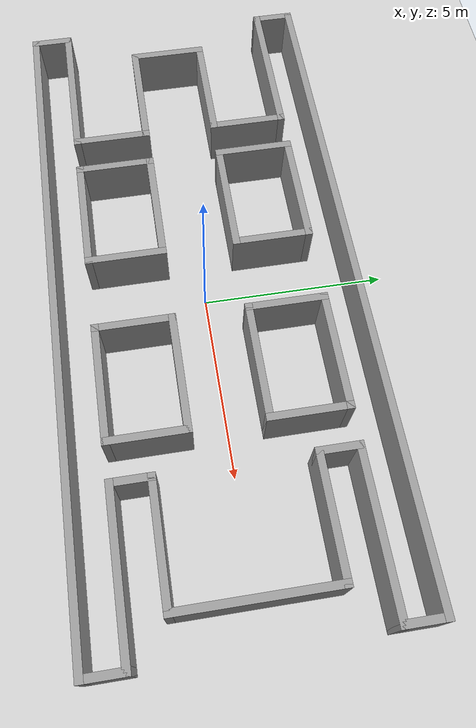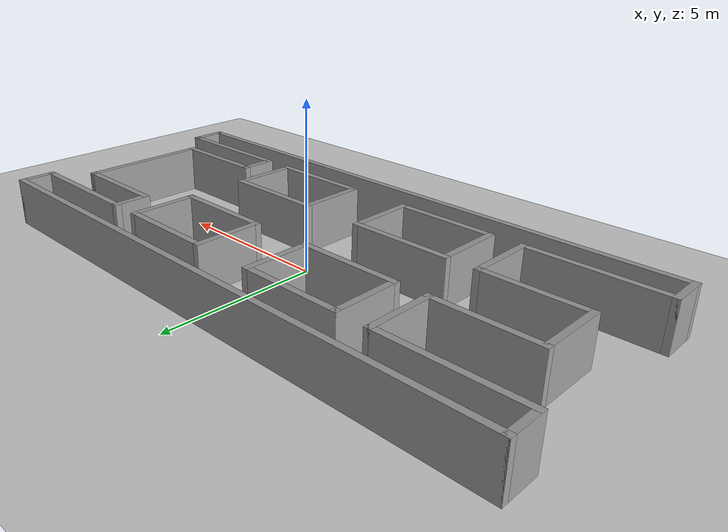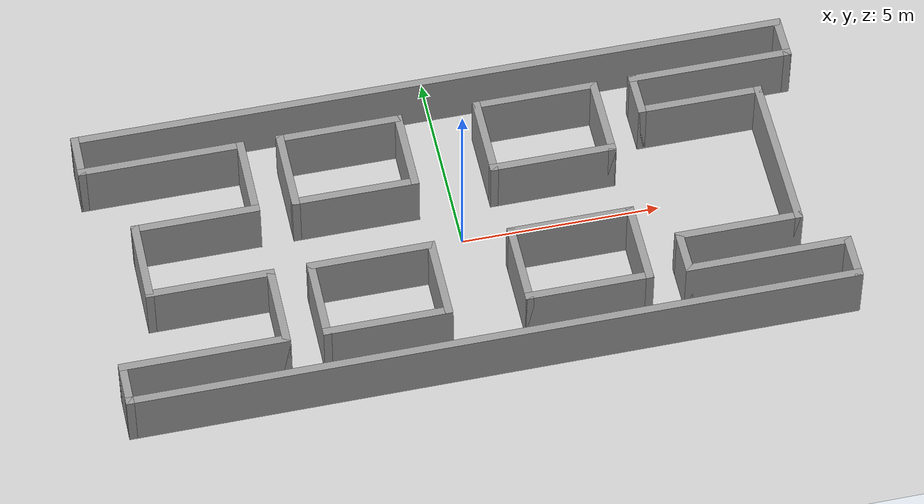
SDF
<sdf version="1.4">
 <world name="default">
  <light name="sun" type="directional">
   <pose>0 0 10 0 -0 0</pose>
   <diffuse>0.8 0.8 0.8 1</diffuse>
   <specular>0.2 0.2 0.2 1</specular>
   <attenuation>
    <range>1000</range>
    <constant>0.9</constant>
    <linear>0.01</linear>
    <quadratic>0.001</quadratic>
   </attenuation>
   <direction>-0.5 0.1 -0.9</direction>
  </light>
  <model name="ground_plane">
   <static>1</static>
   <link name="link">
    <collision name="collision">
     <geometry><plane><normal>0 0 1</normal><size>100 100</size></plane></geometry>
     <surface><friction><ode><mu>100</mu><mu2>50</mu2></ode></friction></surface>
    </collision>
    <visual name="visual">
     <cast_shadows>0</cast_shadows>
     <geometry><plane><normal>0 0 1</normal><size>100 100</size></plane></geometry>
     <material>
      <script><uri>file://media/materials/scripts/gazebo.material</uri><name>Gazebo/Grey</name></script>
     </material>
    </visual>
    <velocity_decay><linear>0</linear><angular>0</angular></velocity_decay>
   </link>
  </model>
  <physics type="ode">
   <max_step_size>0.001</max_step_size>
   <real_time_factor>1</real_time_factor>
   <real_time_update_rate>1000</real_time_update_rate>
   <gravity>0 0 -9.8</gravity>
  </physics>
  <scene><ambient>0.4 0.4 0.4 1</ambient><background>0.7 0.7 0.7 1</background><shadows>1</shadows></scene>
  <spherical_coordinates>
   <surface_model>EARTH_WGS84</surface_model>
   <latitude_deg>0</latitude_deg>
   <longitude_deg>0</longitude_deg>
   <elevation>0</elevation>
   <heading_deg>0</heading_deg>
  </spherical_coordinates>
  <model name="test_building">
   <link name="Wall_13">
    <collision name="Wall_13_Collision">
     <geometry><box><size>3.2 0.2 1.5</size></box></geometry>
     <pose>0 0 0.75 0 -0 0</pose>
    </collision>
    <visual name="Wall_13_Visual">
     <pose>0 0 0.75 0 -0 0</pose>
     <geometry><box><size>3.2 0.2 1.5</size></box></geometry>
     <material>
      <script><uri>file://media/materials/scripts/gazebo.material</uri><name>Gazebo/Grey</name></script>
     </material>
    </visual>
    <velocity_decay><linear>0</linear><angular>0</angular></velocity_decay>
    <pose>2.5 1 0 0 -0 0</pose>
   </link>
   <link name="Wall_19">
    <collision name="Wall_19_Collision">
     <geometry><box><size>2.2 0.2 1.5</size></box></geometry>
     <pose>0 0 0.75 0 -0 0</pose>
    </collision>
    <visual name="Wall_19_Visual">
     <pose>0 0 0.75 0 -0 0</pose>
     <geometry><box><size>2.2 0.2 1.5</size></box></geometry>
     <material>
      <script><uri>file://media/materials/scripts/gazebo.material</uri><name>Gazebo/Grey</name></script>
     </material>
    </visual>
    <velocity_decay><linear>0</linear><angular>0</angular></velocity_decay>
    <pose>1 2 0 0 -0 1.5708</pose>
   </link>
   <link name="Wall_21">
    <collision name="Wall_21_Collision">
     <geometry><box><size>2.2 0.2 1.5</size></box></geometry>
     <pose>0 0 0.75 0 -0 0</pose>
    </collision>
    <visual name="Wall_21_Visual">
     <pose>0 0 0.75 0 -0 0</pose>
     <geometry><box><size>2.2 0.2 1.5</size></box></geometry>
     <material>
      <script><uri>file://media/materials/scripts/gazebo.material</uri><name>Gazebo/Grey</name></script>
     </material>
    </visual>
    <velocity_decay><linear>0</linear><angular>0</angular></velocity_decay>
    <pose>4 2 0 0 -0 1.5708</pose>
   </link>
   <link name="Wall_23">
    <collision name="Wall_23_Collision">
     <geometry><box><size>3.2 0.2 1.5</size></box></geometry>
     <pose>0 0 0.75 0 -0 0</pose>
    </collision>
    <visual name="Wall_23_Visual">
     <pose>0 0 0.75 0 -0 0</pose>
     <geometry><box><size>3.2 0.2 1.5</size></box></geometry>
     <material>
      <script><uri>file://media/materials/scripts/gazebo.material</uri><name>Gazebo/Grey</name></script>
     </material>
    </visual>
    <velocity_decay><linear>0</linear><angular>0</angular></velocity_decay>
    <pose>2.5 3 0 0 -0 0</pose>
   </link>
   <link name="Wall_26">
    <collision name="Wall_26_Collision">
     <geometry><box><size>2.2 0.2 1.5</size></box></geometry>
     <pose>0 0 0.75 0 -0 0</pose>
    </collision>
    <visual name="Wall_26_Visual">
     <pose>0 0 0.75 0 -0 0</pose>
     <geometry><box><size>2.2 0.2 1.5</size></box></geometry>
     <material>
      <script><uri>file://media/materials/scripts/gazebo.material</uri><name>Gazebo/Grey</name></script>
     </material>
    </visual>
    <velocity_decay><linear>0</linear><angular>0</angular></velocity_decay>
    <pose>-1 2 0 0 -0 1.5708</pose>
   </link>
   <link name="Wall_28">
    <collision name="Wall_28_Collision">
     <geometry><box><size>3.2 0.2 1.5</size></box></geometry>
     <pose>0 0 0.75 0 -0 0</pose>
    </collision>
    <visual name="Wall_28_Visual">
     <pose>0 0 0.75 0 -0 0</pose>
     <geometry><box><size>3.2 0.2 1.5</size></box></geometry>
     <material>
      <script><uri>file://media/materials/scripts/gazebo.material</uri><name>Gazebo/Grey</name></script>
     </material>
    </visual>
    <velocity_decay><linear>0</linear><angular>0</angular></velocity_decay>
    <pose>-2.5 3 0 0 -0 3.14159</pose>
   </link>
   <link name="Wall_30">
    <collision name="Wall_30_Collision">
     <geometry><box><size>3.2 0.2 1.5</size></box></geometry>
     <pose>0 0 0.75 0 -0 0</pose>
    </collision>
    <visual name="Wall_30_Visual">
     <pose>0 0 0.75 0 -0 0</pose>
     <geometry><box><size>3.2 0.2 1.5</size></box></geometry>
     <material>
      <script><uri>file://media/materials/scripts/gazebo.material</uri><name>Gazebo/Grey</name></script>
     </material>
    </visual>
    <velocity_decay><linear>0</linear><angular>0</angular></velocity_decay>
    <pose>-2.5 1 0 0 -0 3.14159</pose>
   </link>
   <link name="Wall_32">
    <collision name="Wall_32_Collision">
     <geometry><box><size>2.2 0.2 1.5</size></box></geometry>
     <pose>0 0 0.75 0 -0 0</pose>
    </collision>
    <visual name="Wall_32_Visual">
     <pose>0 0 0.75 0 -0 0</pose>
     <geometry><box><size>2.2 0.2 1.5</size></box></geometry>
     <material>
      <script><uri>file://media/materials/scripts/gazebo.material</uri><name>Gazebo/Grey</name></script>
     </material>
    </visual>
    <velocity_decay><linear>0</linear><angular>0</angular></velocity_decay>
    <pose>-4 2 0 0 -0 1.5708</pose>
   </link>
   <link name="Wall_34">
    <collision name="Wall_34_Collision">
     <geometry><box><size>3.2 0.2 1.5</size></box></geometry>
     <pose>0 0 0.75 0 -0 0</pose>
    </collision>
    <visual name="Wall_34_Visual">
     <pose>0 0 0.75 0 -0 0</pose>
     <geometry><box><size>3.2 0.2 1.5</size></box></geometry>
     <material>
      <script><uri>file://media/materials/scripts/gazebo.material</uri><name>Gazebo/Grey</name></script>
     </material>
    </visual>
    <velocity_decay><linear>0</linear><angular>0</angular></velocity_decay>
    <pose>-2.5 -1 0 0 -0 3.14159</pose>
   </link>
   <link name="Wall_36">
    <collision name="Wall_36_Collision">
     <geometry><box><size>2.2 0.2 1.5</size></box></geometry>
     <pose>0 0 0.75 0 -0 0</pose>
    </collision>
    <visual name="Wall_36_Visual">
     <pose>0 0 0.75 0 -0 0</pose>
     <geometry><box><size>2.2 0.2 1.5</size></box></geometry>
     <material>
      <script><uri>file://media/materials/scripts/gazebo.material</uri><name>Gazebo/Grey</name></script>
     </material>
    </visual>
    <velocity_decay><linear>0</linear><angular>0</angular></velocity_decay>
    <pose>-1 -2 0 0 0 -1.5708</pose>
   </link>
   <link name="Wall_38">
    <collision name="Wall_38_Collision">
     <geometry><box><size>2.2 0.2 1.5</size></box></geometry>
     <pose>0 0 0.75 0 -0 0</pose>
    </collision>
    <visual name="Wall_38_Visual">
     <pose>0 0 0.75 0 -0 0</pose>
     <geometry><box><size>2.2 0.2 1.5</size></box></geometry>
     <material>
      <script><uri>file://media/materials/scripts/gazebo.material</uri><name>Gazebo/Grey</name></script>
     </material>
    </visual>
    <velocity_decay><linear>0</linear><angular>0</angular></velocity_decay>
    <pose>-4 -2 0 0 0 -1.5708</pose>
   </link>
   <link name="Wall_40">
    <collision name="Wall_40_Collision">
     <geometry><box><size>3.2 0.2 1.5</size></box></geometry>
     <pose>0 0 0.75 0 -0 0</pose>
    </collision>
    <visual name="Wall_40_Visual">
     <pose>0 0 0.75 0 -0 0</pose>
     <geometry><box><size>3.2 0.2 1.5</size></box></geometry>
     <material>
      <script><uri>file://media/materials/scripts/gazebo.material</uri><name>Gazebo/Grey</name></script>
     </material>
    </visual>
    <velocity_decay><linear>0</linear><angular>0</angular></velocity_decay>
    <pose>-2.5 -3 0 0 -0 3.14159</pose>
   </link>
   <link name="Wall_47">
    <collision name="Wall_47_Collision">
     <geometry><box><size>3.2 0.2 1.5</size></box></geometry>
     <pose>0 0 0.75 0 -0 0</pose>
    </collision>
    <visual name="Wall_47_Visual">
     <pose>0 0 0.75 0 -0 0</pose>
     <geometry><box><size>3.2 0.2 1.5</size></box></geometry>
     <material>
      <script><uri>file://media/materials/scripts/gazebo.material</uri><name>Gazebo/Grey</name></script>
     </material>
    </visual>
    <velocity_decay><linear>0</linear><angular>0</angular></velocity_decay>
    <pose>2.5 -1 0 0 -0 0</pose>
   </link>
   <link name="Wall_49">
    <collision name="Wall_49_Collision">
     <geometry><box><size>2.2 0.2 1.5</size></box></geometry>
     <pose>0 0 0.75 0 -0 0</pose>
    </collision>
    <visual name="Wall_49_Visual">
     <pose>0 0 0.75 0 -0 0</pose>
     <geometry><box><size>2.2 0.2 1.5</size></box></geometry>
     <material>
      <script><uri>file://media/materials/scripts/gazebo.material</uri><name>Gazebo/Grey</name></script>
     </material>
    </visual>
    <velocity_decay><linear>0</linear><angular>0</angular></velocity_decay>
    <pose>1 -2 0 0 0 -1.5708</pose>
   </link>
   <link name="Wall_51">
    <collision name="Wall_51_Collision">
     <geometry><box><size>3.2 0.2 1.5</size></box></geometry>
     <pose>0 0 0.75 0 -0 0</pose>
    </collision>
    <visual name="Wall_51_Visual">
     <pose>0 0 0.75 0 -0 0</pose>
     <geometry><box><size>3.2 0.2 1.5</size></box></geometry>
     <material>
      <script><uri>file://media/materials/scripts/gazebo.material</uri><name>Gazebo/Grey</name></script>
     </material>
    </visual>
    <velocity_decay><linear>0</linear><angular>0</angular></velocity_decay>
    <pose>2.5 -3 0 0 -0 0</pose>
   </link>
   <link name="Wall_53">
    <collision name="Wall_53_Collision">
     <geometry><box><size>2.2 0.2 1.5</size></box></geometry>
     <pose>0 0 0.75 0 -0 0</pose>
    </collision>
    <visual name="Wall_53_Visual">
     <pose>0 0 0.75 0 -0 0</pose>
     <geometry><box><size>2.2 0.2 1.5</size></box></geometry>
     <material>
      <script><uri>file://media/materials/scripts/gazebo.material</uri><name>Gazebo/Grey</name></script>
     </material>
    </visual>
    <velocity_decay><linear>0</linear><angular>0</angular></velocity_decay>
    <pose>4 -2 0 0 0 -1.5708</pose>
   </link>
   <link name="Wall_55">
    <collision name="Wall_55_Collision">
     <geometry><box><size>2.2 0.2 1.5</size></box></geometry>
     <pose>0 0 0.75 0 -0 0</pose>
    </collision>
    <visual name="Wall_55_Visual">
     <pose>0 0 0.75 0 -0 0</pose>
     <geometry><box><size>2.2 0.2 1.5</size></box></geometry>
     <material>
      <script><uri>file://media/materials/scripts/gazebo.material</uri><name>Gazebo/Grey</name></script>
     </material>
    </visual>
    <velocity_decay><linear>0</linear><angular>0</angular></velocity_decay>
    <pose>-5 2 0 0 -0 1.5708</pose>
   </link>
   <link name="Wall_57">
    <collision name="Wall_57_Collision">
     <geometry><box><size>4.2 0.2 1.5</size></box></geometry>
     <pose>0 0 0.75 0 -0 0</pose>
    </collision>
    <visual name="Wall_57_Visual">
     <pose>0 0 0.75 0 -0 0</pose>
     <geometry><box><size>4.2 0.2 1.5</size></box></geometry>
     <material>
      <script><uri>file://media/materials/scripts/gazebo.material</uri><name>Gazebo/Grey</name></script>
     </material>
    </visual>
    <velocity_decay><linear>0</linear><angular>0</angular></velocity_decay>
    <pose>-7 3 0 0 -0 0</pose>
   </link>
   <link name="Wall_59">
    <collision name="Wall_59_Collision">
     <geometry><box><size>18.2 0.2 1.5</size></box></geometry>
     <pose>0 0 0.75 0 -0 0</pose>
    </collision>
    <visual name="Wall_59_Visual">
     <pose>0 0 0.75 0 -0 0</pose>
     <geometry><box><size>18.2 0.2 1.5</size></box></geometry>
     <material>
      <script><uri>file://media/materials/scripts/gazebo.material</uri><name>Gazebo/Grey</name></script>
     </material>
    </visual>
    <velocity_decay><linear>0</linear><angular>0</angular></velocity_decay>
    <pose>0 4 0 0 -0 0</pose>
   </link>
   <link name="Wall_61">
    <collision name="Wall_61_Collision">
     <geometry><box><size>1.2 0.2 1.5</size></box></geometry>
     <pose>0 0 0.75 0 -0 0</pose>
    </collision>
    <visual name="Wall_61_Visual">
     <pose>0 0 0.75 0 -0 0</pose>
     <geometry><box><size>1.2 0.2 1.5</size></box></geometry>
     <material>
      <script><uri>file://media/materials/scripts/gazebo.material</uri><name>Gazebo/Grey</name></script>
     </material>
    </visual>
    <velocity_decay><linear>0</linear><angular>0</angular></velocity_decay>
    <pose>-9 3.5 0 0 0 -1.5708</pose>
   </link>
   <link name="Wall_63">
    <collision name="Wall_63_Collision">
     <geometry><box><size>1.2 0.2 1.5</size></box></geometry>
     <pose>0 0 0.75 0 -0 0</pose>
    </collision>
    <visual name="Wall_63_Visual">
     <pose>0 0 0.75 0 -0 0</pose>
     <geometry><box><size>1.2 0.2 1.5</size></box></geometry>
     <material>
      <script><uri>file://media/materials/scripts/gazebo.material</uri><name>Gazebo/Grey</name></script>
     </material>
    </visual>
    <velocity_decay><linear>0</linear><angular>0</angular></velocity_decay>
    <pose>9 3.5 0 0 0 -1.5708</pose>
   </link>
   <link name="Wall_65">
    <collision name="Wall_65_Collision">
     <geometry><box><size>4.2 0.2 1.5</size></box></geometry>
     <pose>0 0 0.75 0 -0 0</pose>
    </collision>
    <visual name="Wall_65_Visual">
     <pose>0 0 0.75 0 -0 0</pose>
     <geometry><box><size>4.2 0.2 1.5</size></box></geometry>
     <material>
      <script><uri>file://media/materials/scripts/gazebo.material</uri><name>Gazebo/Grey</name></script>
     </material>
    </visual>
    <velocity_decay><linear>0</linear><angular>0</angular></velocity_decay>
    <pose>7 3 0 0 -0 0</pose>
   </link>
   <link name="Wall_67">
    <collision name="Wall_67_Collision">
     <geometry><box><size>1.2 0.2 1.5</size></box></geometry>
     <pose>0 0 0.75 0 -0 0</pose>
    </collision>
    <visual name="Wall_67_Visual">
     <pose>0 0 0.75 0 -0 0</pose>
     <geometry><box><size>1.2 0.2 1.5</size></box></geometry>
     <material>
      <script><uri>file://media/materials/scripts/gazebo.material</uri><name>Gazebo/Grey</name></script>
     </material>
    </visual>
    <velocity_decay><linear>0</linear><angular>0</angular></velocity_decay>
    <pose>5 2.5 0 0 0 -1.5708</pose>
   </link>
   <link name="Wall_69">
    <collision name="Wall_69_Collision">
     <geometry><box><size>3.2 0.2 1.5</size></box></geometry>
     <pose>0 0 0.75 0 -0 0</pose>
    </collision>
    <visual name="Wall_69_Visual">
     <pose>0 0 0.75 0 -0 0</pose>
     <geometry><box><size>3.2 0.2 1.5</size></box></geometry>
     <material>
      <script><uri>file://media/materials/scripts/gazebo.material</uri><name>Gazebo/Grey</name></script>
     </material>
    </visual>
    <velocity_decay><linear>0</linear><angular>0</angular></velocity_decay>
    <pose>-6.5 1 0 0 -0 3.14159</pose>
   </link>
   <link name="Wall_71">
    <collision name="Wall_71_Collision">
     <geometry><box><size>2.2 0.2 1.5</size></box></geometry>
     <pose>0 0 0.75 0 -0 0</pose>
    </collision>
    <visual name="Wall_71_Visual">
     <pose>0 0 0.75 0 -0 0</pose>
     <geometry><box><size>2.2 0.2 1.5</size></box></geometry>
     <material>
      <script><uri>file://media/materials/scripts/gazebo.material</uri><name>Gazebo/Grey</name></script>
     </material>
    </visual>
    <velocity_decay><linear>0</linear><angular>0</angular></velocity_decay>
    <pose>-8 0 0 0 0 -1.5708</pose>
   </link>
   <link name="Wall_73">
    <collision name="Wall_73_Collision">
     <geometry><box><size>3.2 0.2 1.5</size></box></geometry>
     <pose>0 0 0.75 0 -0 0</pose>
    </collision>
    <visual name="Wall_73_Visual">
     <pose>0 0 0.75 0 -0 0</pose>
     <geometry><box><size>3.2 0.2 1.5</size></box></geometry>
     <material>
      <script><uri>file://media/materials/scripts/gazebo.material</uri><name>Gazebo/Grey</name></script>
     </material>
    </visual>
    <velocity_decay><linear>0</linear><angular>0</angular></velocity_decay>
    <pose>-6.5 -1 0 0 -0 3.14159</pose>
   </link>
   <link name="Wall_75">
    <collision name="Wall_75_Collision">
     <geometry><box><size>2.2 0.2 1.5</size></box></geometry>
     <pose>0 0 0.75 0 -0 0</pose>
    </collision>
    <visual name="Wall_75_Visual">
     <pose>0 0 0.75 0 -0 0</pose>
     <geometry><box><size>2.2 0.2 1.5</size></box></geometry>
     <material>
      <script><uri>file://media/materials/scripts/gazebo.material</uri><name>Gazebo/Grey</name></script>
     </material>
    </visual>
    <velocity_decay><linear>0</linear><angular>0</angular></velocity_decay>
    <pose>-5 -2 0 0 0 -1.5708</pose>
   </link>
   <link name="Wall_77">
    <collision name="Wall_77_Collision">
     <geometry><box><size>4.2 0.2 1.5</size></box></geometry>
     <pose>0 0 0.75 0 -0 0</pose>
    </collision>
    <visual name="Wall_77_Visual">
     <pose>0 0 0.75 0 -0 0</pose>
     <geometry><box><size>4.2 0.2 1.5</size></box></geometry>
     <material>
      <script><uri>file://media/materials/scripts/gazebo.material</uri><name>Gazebo/Grey</name></script>
     </material>
    </visual>
    <velocity_decay><linear>0</linear><angular>0</angular></velocity_decay>
    <pose>-7 -3 0 0 -0 0</pose>
   </link>
   <link name="Wall_79">
    <collision name="Wall_79_Collision">
     <geometry><box><size>1.2 0.2 1.5</size></box></geometry>
     <pose>0 0 0.75 0 -0 0</pose>
    </collision>
    <visual name="Wall_79_Visual">
     <pose>0 0 0.75 0 -0 0</pose>
     <geometry><box><size>1.2 0.2 1.5</size></box></geometry>
     <material>
      <script><uri>file://media/materials/scripts/gazebo.material</uri><name>Gazebo/Grey</name></script>
     </material>
    </visual>
    <velocity_decay><linear>0</linear><angular>0</angular></velocity_decay>
    <pose>-9 -3.5 0 0 -0 1.5708</pose>
   </link>
   <link name="Wall_81">
    <collision name="Wall_81_Collision">
     <geometry><box><size>18.2 0.2 1.5</size></box></geometry>
     <pose>0 0 0.75 0 -0 0</pose>
    </collision>
    <visual name="Wall_81_Visual">
     <pose>0 0 0.75 0 -0 0</pose>
     <geometry><box><size>18.2 0.2 1.5</size></box></geometry>
     <material>
      <script><uri>file://media/materials/scripts/gazebo.material</uri><name>Gazebo/Grey</name></script>
     </material>
    </visual>
    <velocity_decay><linear>0</linear><angular>0</angular></velocity_decay>
    <pose>0 -4 0 0 -0 3.14159</pose>
   </link>
   <link name="Wall_83">
    <collision name="Wall_83_Collision">
     <geometry><box><size>1.2 0.2 1.5</size></box></geometry>
     <pose>0 0 0.75 0 -0 0</pose>
    </collision>
    <visual name="Wall_83_Visual">
     <pose>0 0 0.75 0 -0 0</pose>
     <geometry><box><size>1.2 0.2 1.5</size></box></geometry>
     <material>
      <script><uri>file://media/materials/scripts/gazebo.material</uri><name>Gazebo/Grey</name></script>
     </material>
    </visual>
    <velocity_decay><linear>0</linear><angular>0</angular></velocity_decay>
    <pose>9 -3.5 0 0 0 -1.5708</pose>
   </link>
   <link name="Wall_85">
    <collision name="Wall_85_Collision">
     <geometry><box><size>4.2 0.2 1.5</size></box></geometry>
     <pose>0 0 0.75 0 -0 0</pose>
    </collision>
    <visual name="Wall_85_Visual">
     <pose>0 0 0.75 0 -0 0</pose>
     <geometry><box><size>4.2 0.2 1.5</size></box></geometry>
     <material>
      <script><uri>file://media/materials/scripts/gazebo.material</uri><name>Gazebo/Grey</name></script>
     </material>
    </visual>
    <velocity_decay><linear>0</linear><angular>0</angular></velocity_decay>
    <pose>7 -3 0 0 -0 0</pose>
   </link>
   <link name="Wall_87">
    <collision name="Wall_87_Collision">
     <geometry><box><size>1.2 0.2 1.5</size></box></geometry>
     <pose>0 0 0.75 0 -0 0</pose>
    </collision>
    <visual name="Wall_87_Visual">
     <pose>0 0 0.75 0 -0 0</pose>
     <geometry><box><size>1.2 0.2 1.5</size></box></geometry>
     <material>
      <script><uri>file://media/materials/scripts/gazebo.material</uri><name>Gazebo/Grey</name></script>
     </material>
    </visual>
    <velocity_decay><linear>0</linear><angular>0</angular></velocity_decay>
    <pose>5 -2.5 0 0 0 -1.5708</pose>
   </link>
   <link name="Wall_89">
    <collision name="Wall_89_Collision">
     <geometry><box><size>3.2 0.2 1.5</size></box></geometry>
     <pose>0 0 0.75 0 -0 0</pose>
    </collision>
    <visual name="Wall_89_Visual">
     <pose>0 0 0.75 0 -0 0</pose>
     <geometry><box><size>3.2 0.2 1.5</size></box></geometry>
     <material>
      <script><uri>file://media/materials/scripts/gazebo.material</uri><name>Gazebo/Grey</name></script>
     </material>
    </visual>
    <velocity_decay><linear>0</linear><angular>0</angular></velocity_decay>
    <pose>6.5 -2 0 0 -0 3.14159</pose>
   </link>
   <link name="Wall_91">
    <collision name="Wall_91_Collision">
     <geometry><box><size>4.2 0.2 1.5</size></box></geometry>
     <pose>0 0 0.75 0 -0 0</pose>
    </collision>
    <visual name="Wall_91_Visual">
     <pose>0 0 0.75 0 -0 0</pose>
     <geometry><box><size>4.2 0.2 1.5</size></box></geometry>
     <material>
      <script><uri>file://media/materials/scripts/gazebo.material</uri><name>Gazebo/Grey</name></script>
     </material>
    </visual>
    <velocity_decay><linear>0</linear><angular>0</angular></velocity_decay>
    <pose>8 0 0 0 0 -1.5708</pose>
   </link>
   <link name="Wall_93">
    <collision name="Wall_93_Collision">
     <geometry><box><size>3.2 0.2 1.5</size></box></geometry>
     <pose>0 0 0.75 0 -0 0</pose>
    </collision>
    <visual name="Wall_93_Visual">
     <pose>0 0 0.75 0 -0 0</pose>
     <geometry><box><size>3.2 0.2 1.5</size></box></geometry>
     <material>
      <script><uri>file://media/materials/scripts/gazebo.material</uri><name>Gazebo/Grey</name></script>
     </material>
    </visual>
    <velocity_decay><linear>0</linear><angular>0</angular></velocity_decay>
    <pose>6.5 2 0 0 -0 0</pose>
   </link>
   <static>1</static>
  </model>
 </world>
</sdf>
